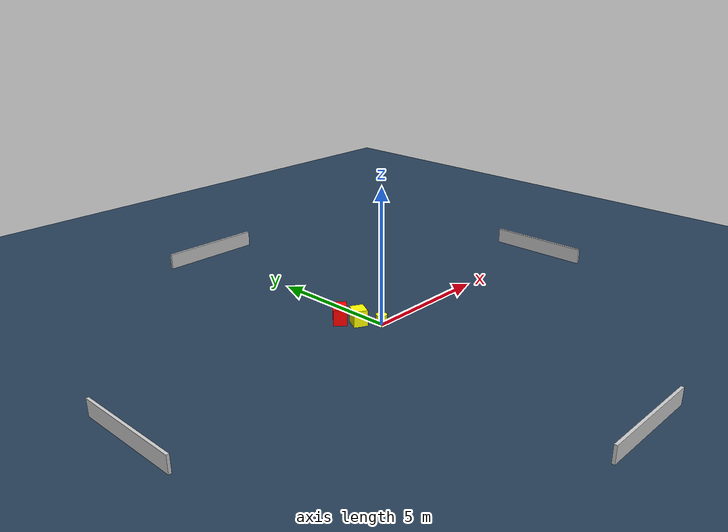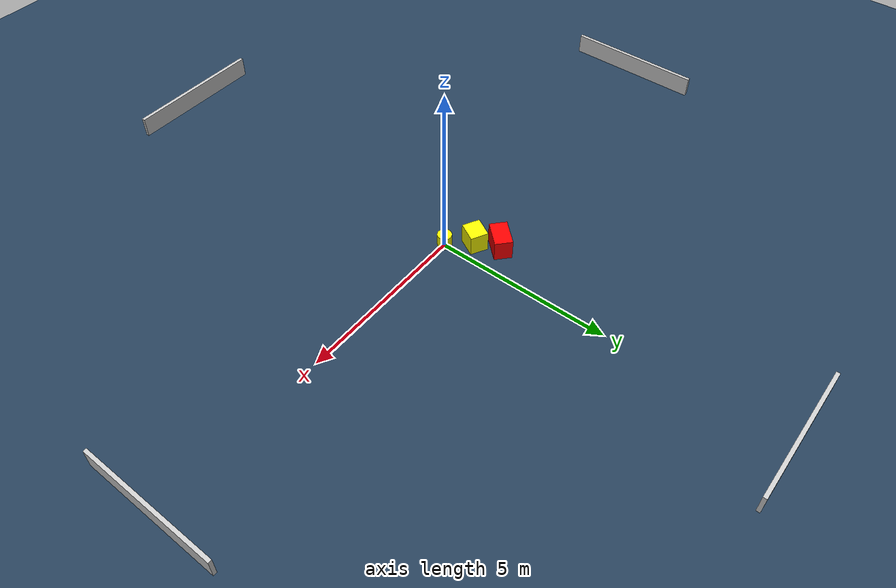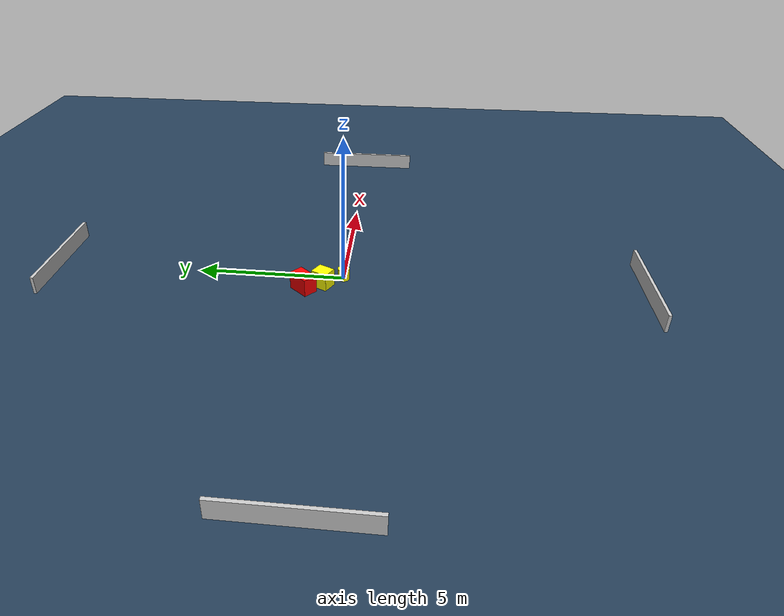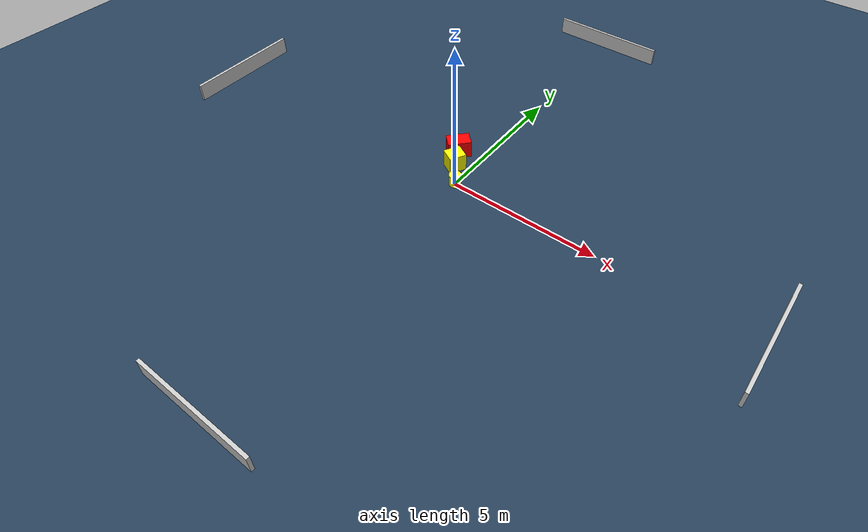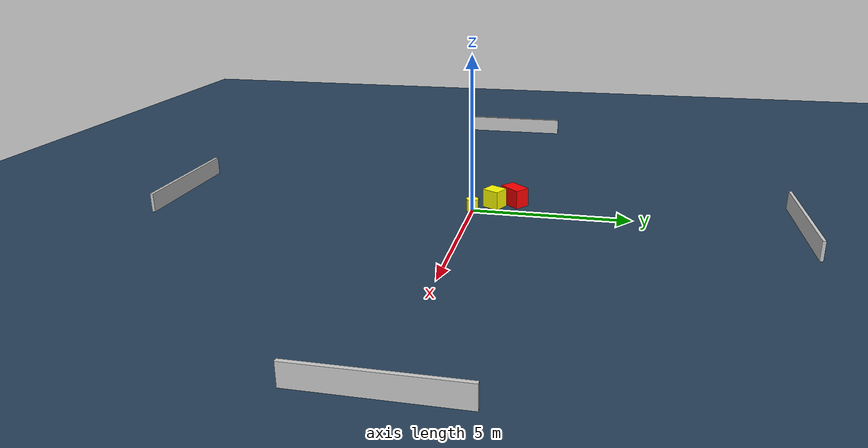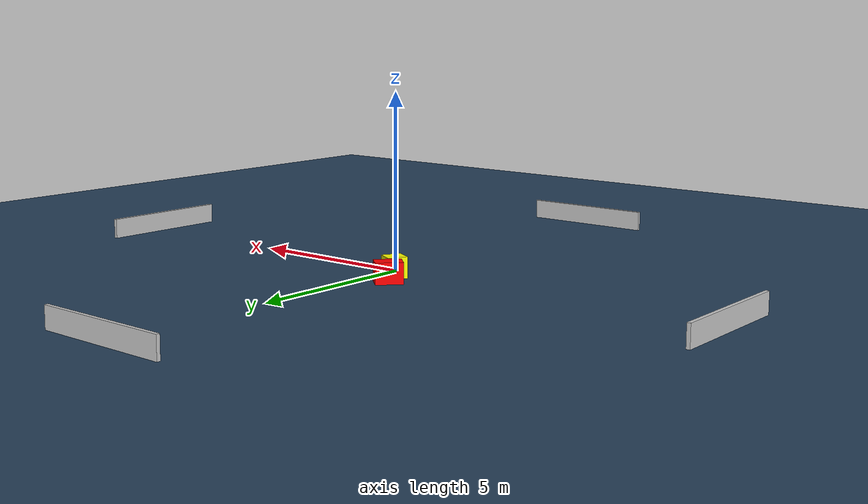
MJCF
<?xml version="1.0" ?>
<mujoco model="generated_environment">
  <option timestep="0.01" integrator="RK4" cone="elliptic"/>
  <default>
    <geom density="1"/>
  </default>
  <asset>
    <texture builtin="gradient" height="3072" name="skybox" rgb1="0.3 0.5 0.7" rgb2="0 0 0" type="skybox" width="512"/>
    <texture builtin="checker" height="300" name="groundplane" rgb1="0.2 0.3 0.4" rgb2="0.1 0.2 0.3" type="2d" width="300"/>
    <material name="groundplane" reflectance="0.2" texrepeat="5 5" texture="groundplane"/>
  </asset>
  <worldbody>
    <light dir="0 0 -1" directional="true" pos="0 0 1.5"/>
    <geom condim="3" friction="0.5 0.005 0.001" material="groundplane" name="floor" pos="0 0 0" size="0 0 0.05" type="plane"/>
    <body name="walls">
      <geom name="wall_1" condim="4" pos="-10.0 0.0 0.3" rgba="0.800000011920929 0.800000011920929 0.800000011920929 1.0" size="0.05 2.0 0.3" type="box"/>
      <geom name="wall_2" condim="4" pos="10.0 0.0 0.3" rgba="0.800000011920929 0.800000011920929 0.800000011920929 1.0" size="0.05 2.0 0.3" type="box"/>
      <geom name="wall_3" condim="4" pos="0.0 -10.0 0.3" rgba="0.800000011920929 0.800000011920929 0.800000011920929 1.0" size="2.0 0.05 0.3" type="box"/>
      <geom name="wall_4" condim="4" pos="0.0 10.0 0.3" rgba="0.800000011920929 0.800000011920929 0.800000011920929 1.0" size="2.0 0.05 0.3" type="box"/>
    </body>
    <body name="robot">
      <joint name="joint_x" type="slide" pos="0 0 0" axis="1 0 0"/>
      <joint name="joint_y" type="slide" pos="0 0 0" axis="0 1 0"/>
      <geom name="robot" type="cylinder" pos="0.0 0.0 0.2" size="0.2 0.2 0.0" mass="5.0" friction="1.0 0.005 0.0001" condim="4" rgba="1.0 1.0 0.0 1.0"/>
    </body>
    <body name="obstacle_1_movable">
      <geom name="obstacle_1_movable" condim="4" pos="-0.49801295813879 0.6446841599492009 0.3" euler="0 0 151.95875054277644" friction="0.0 0.005 0.001" rgba="1.0 1.0 0.0 1.0" size="0.2530159022383715 0.28543983419850427 0.3" type="box" mass="0.1"/>
      <joint type="free"/>
    </body>
    <body name="obstacle_2_static">
      <geom name="obstacle_2_static" condim="4" pos="-0.8139298148111315 1.2620264350348664 0.3" euler="0 0 47.70098470273809" friction="0.0 0.005 0.001" rgba="1.0 0.0 0.0 1.0" size="0.3831300722947546 0.24796404713936138 0.3" type="box"/>
    </body>
  </worldbody>
  <actuator>
    <motor name="actuator_x" joint="joint_x" gear="1" ctrlrange="-1 1"/>
    <motor name="actuator_y" joint="joint_y" gear="1" ctrlrange="-1 1"/>
  </actuator>
</mujoco>
